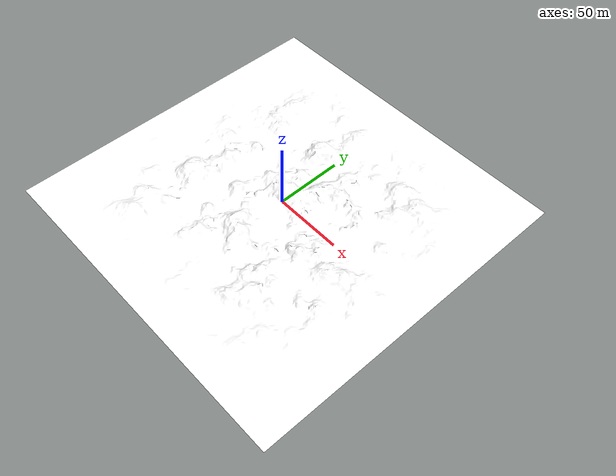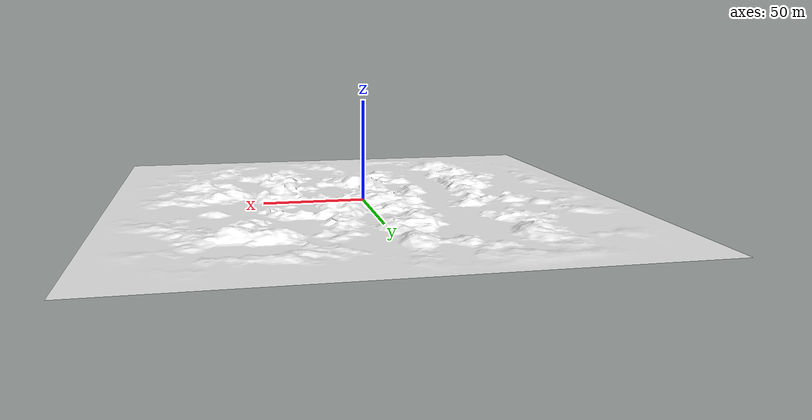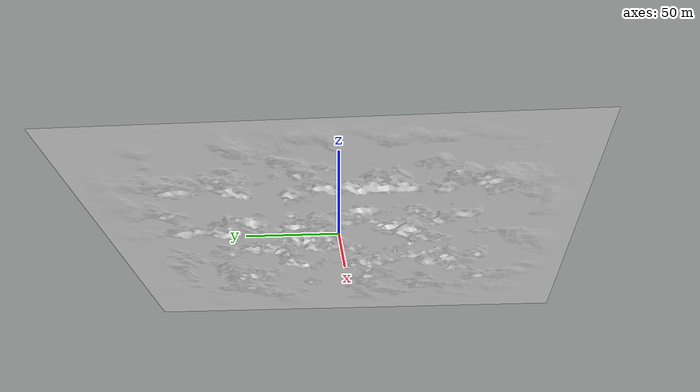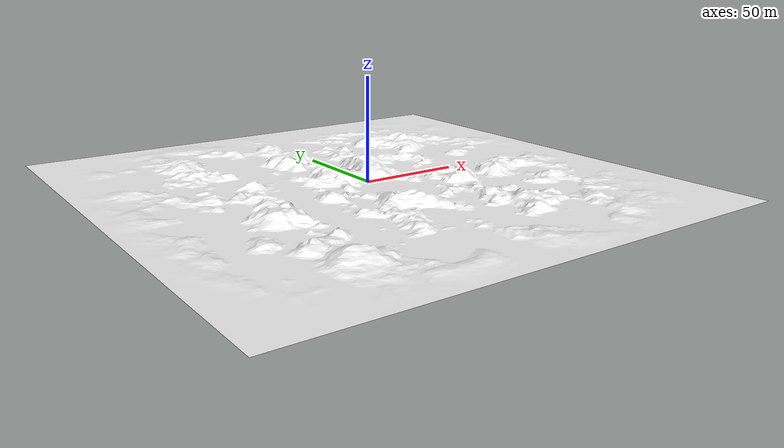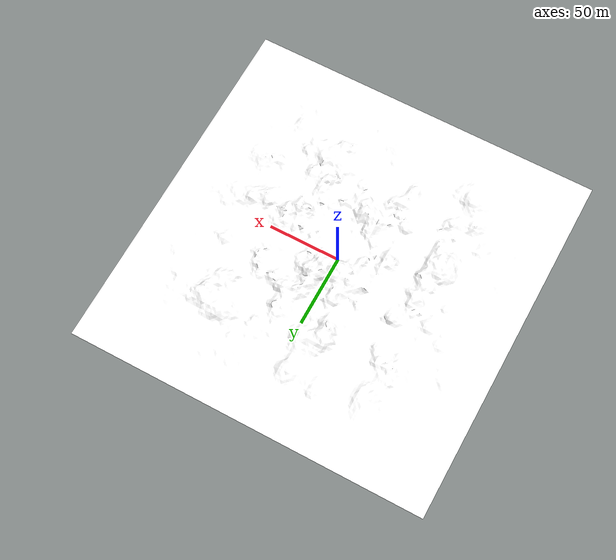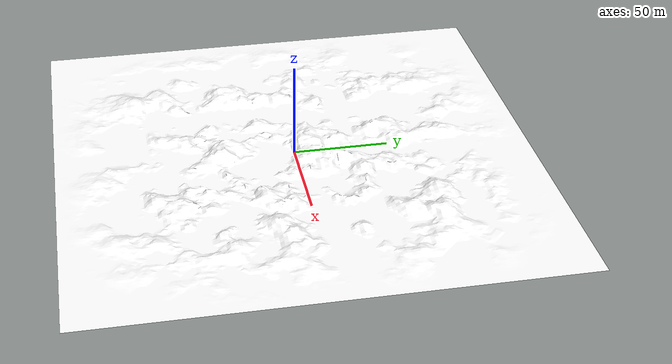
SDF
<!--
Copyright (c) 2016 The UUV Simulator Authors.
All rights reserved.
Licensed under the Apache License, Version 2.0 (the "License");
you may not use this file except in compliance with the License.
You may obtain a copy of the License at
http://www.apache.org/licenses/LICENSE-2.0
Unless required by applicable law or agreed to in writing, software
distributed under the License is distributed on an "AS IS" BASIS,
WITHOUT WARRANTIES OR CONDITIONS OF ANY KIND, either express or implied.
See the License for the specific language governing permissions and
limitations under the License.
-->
<?xml version="1.0" ?>
<sdf version="1.6">
  <model name="sand_heightmap">
    <static>true</static>
    <link name="link">
      <collision name="ground">
        <pose>0 0 0 0 0 0</pose>
        <geometry>
          <mesh>
            <scale>0.5 0.5 0.25</scale>
            <uri>file://src/ray_auv/ray_description/models/sand_heightmap/meshes/sandseabed.dae</uri>
          </mesh>
        </geometry>
      </collision>
      <visual name="ground_sand">
        <cast_shadows>true</cast_shadows>
        <pose>0 0 0 0 0 0</pose>
        <geometry>
          <mesh>
            <scale>0.5 0.5 0.25</scale>
            <uri>file://src/ray_auv/ray_description/models/sand_heightmap/meshes/sandseabed.dae</uri>
          </mesh>
        </geometry>
        <material>
          <ambient>1 1 1 1</ambient>
          <diffuse>1 1 1 1</diffuse>
          <specular>0.1 0.1 0.1 0.1</specular>
          <pbr>
            <metal>
              <albedo_map>materials/soil_sand_0045_01.jpg</albedo_map>
              <normal_map>materials/flat_normal.png</normal_map>
              <roughness>0.9</roughness>
              <metalness>0.01</metalness>
            </metal>
          </pbr>
        </material>
      </visual>
    </link>
  </model>
</sdf>
